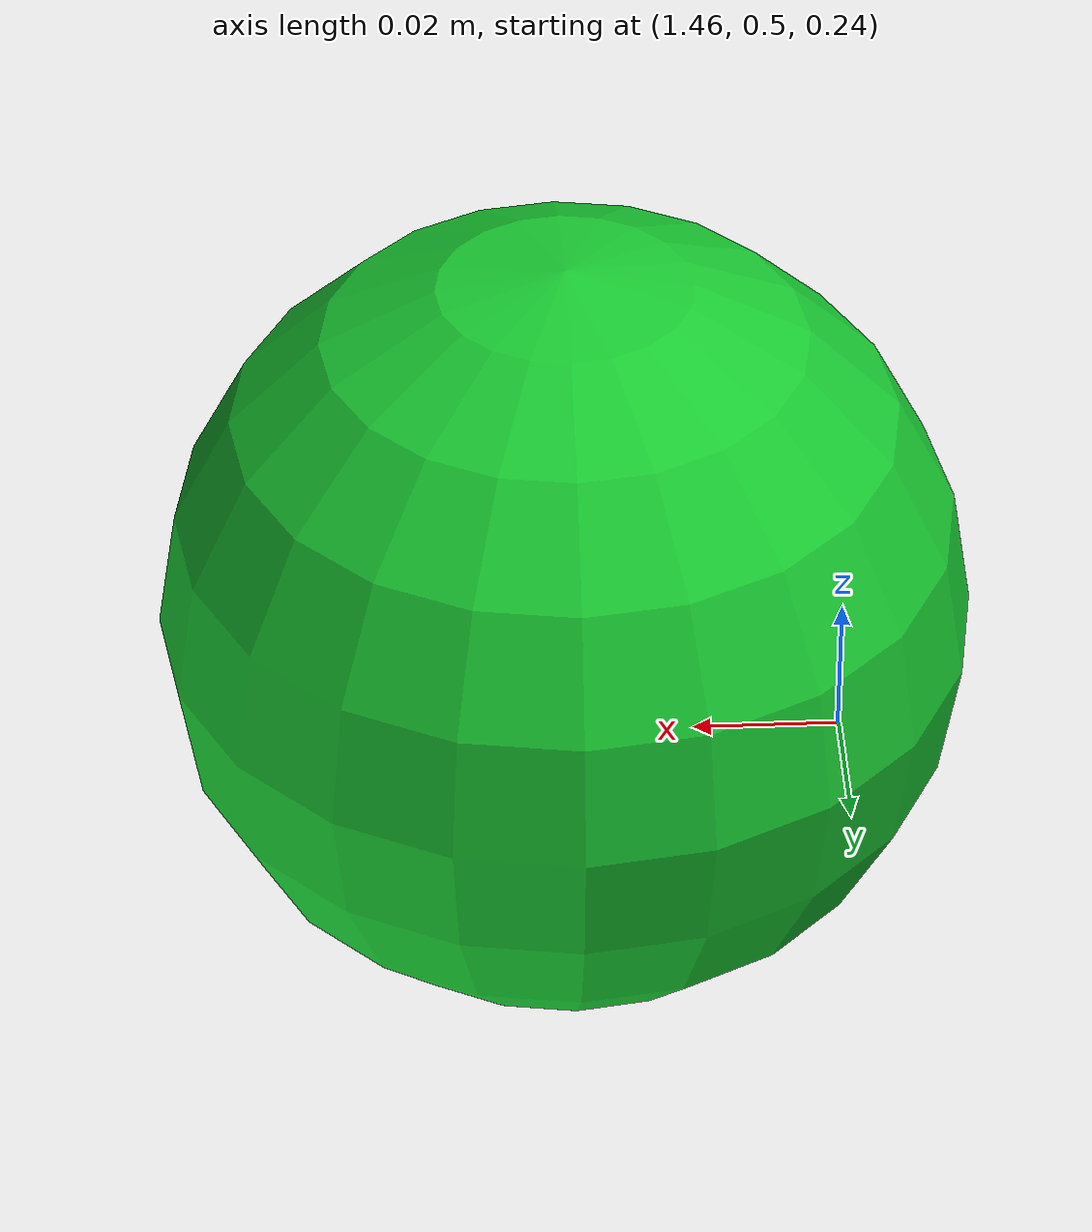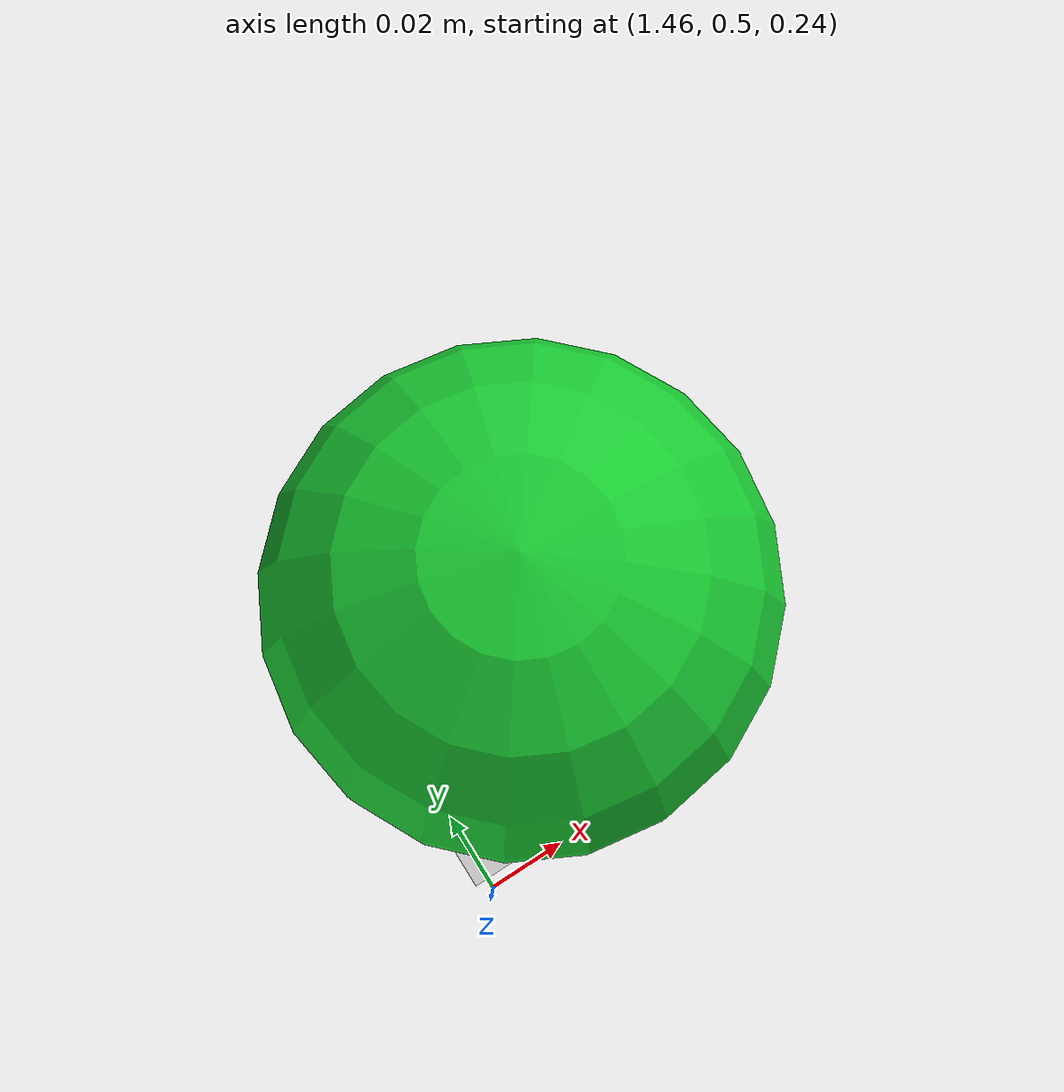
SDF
<?xml version="1.0" ?>
<sdf version="1.6">
  <world name="go2_sim">
    <physics name="1ms" type="ignored">
      <max_step_size>0.001</max_step_size>
      <real_time_factor>1.0</real_time_factor>
    </physics>
    <plugin
      filename="ignition-gazebo-physics-system"
      name="gz::sim::systems::Physics">
    </plugin>
    <plugin
      filename="ignition-gazebo-user-commands-system"
      name="gz::sim::systems::UserCommands">
    </plugin>
    <plugin
      filename="ignition-gazebo-scene-broadcaster-system"
      name="gz::sim::systems::SceneBroadcaster">
    </plugin>
    <plugin
      filename="ignition-gazebo-contact-system"
      name="gz::sim::systems::Contact">
    </plugin>
    <!-- needed by the Go2 front camera and LiDAR (sensors:=true) -->
    <plugin filename="ignition-gazebo-sensors-system"
            name="gz::sim::systems::Sensors">
      <render_engine>ogre2</render_engine>
    </plugin>

    <light type="directional" name="sun">
      <cast_shadows>true</cast_shadows>
      <pose>0 0 10 0 0 0</pose>
      <diffuse>0.8 0.8 0.8 1</diffuse>
      <specular>0.2 0.2 0.2 1</specular>
      <attenuation>
        <range>1000</range>
        <constant>0.9</constant>
        <linear>0.01</linear>
        <quadratic>0.001</quadratic>
      </attenuation>
      <direction>-0.5 0.1 -0.9</direction>
    </light>

    <model name="ground_plane">
      <static>true</static>
      <link name="link">
        <collision name="collision">
          <geometry>
            <plane>
              <normal>0 0 1</normal>
              <size>100 100</size>
            </plane>
          </geometry>
        </collision>
        <visual name="visual">
          <geometry>
            <plane>
              <normal>0 0 1</normal>
              <size>100 100</size>
            </plane>
          </geometry>
          <material>
            <ambient>0.8 0.8 0.8 1</ambient>
            <diffuse>0.8 0.8 0.8 1</diffuse>
            <specular>0.8 0.8 0.8 1</specular>
          </material>
        </visual>
      </link>
    </model>

    <!-- grasp target: small green ball on the pedestal -->
    <model name="grasp_ball">
      <pose>1.5 0.55 0.30 0 0 0</pose>
      <velocity_decay><linear>2.0</linear><angular>2.0</angular></velocity_decay>
      <plugin filename="ignition-gazebo-odometry-publisher-system"
              name="ignition::gazebo::systems::OdometryPublisher">
        <odom_frame>world</odom_frame>
        <robot_base_frame>grasp_ball</robot_base_frame>
        <dimensions>3</dimensions>
        <odom_publish_frequency>30</odom_publish_frequency>
      </plugin>
      <link name="link">
        <gravity>false</gravity>
        <inertial>
          <mass>0.03</mass>
          <inertia><ixx>3e-05</ixx><iyy>3e-05</iyy><izz>3e-05</izz></inertia>
        </inertial>
        <collision name="collision">
          <geometry><sphere><radius>0.05</radius></sphere></geometry>
        </collision>
        <visual name="visual">
          <geometry><sphere><radius>0.05</radius></sphere></geometry>
          <material>
            <ambient>0.1 0.8 0.2 1</ambient>
            <diffuse>0.1 0.8 0.2 1</diffuse>
          </material>
        </visual>
      </link>
    </model>

  </world>
</sdf>
